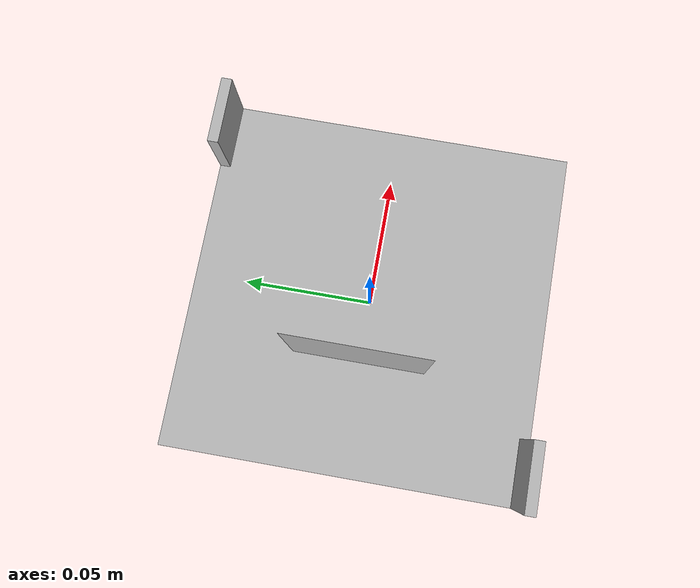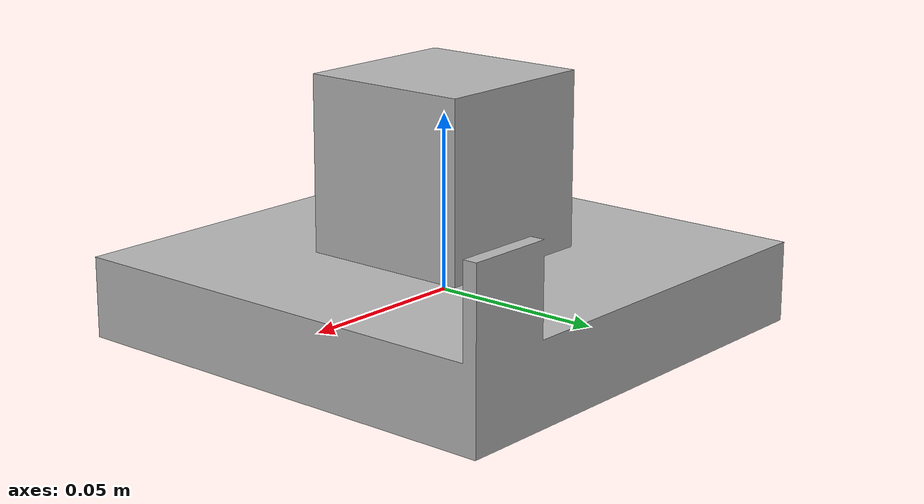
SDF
<?xml version="1.0"?>
<sdf version="1.6">
  <model name="P80 Pallet">
    <pose>0 0 0 0 0 0</pose>
    <static>false</static>
    <link name="link">
      <visual name="visual">
        <geometry>
          <mesh>
            <uri>model://P80_Pallet/meshes/pallet.dae</uri>
            <scale>0.1 0.1 0.1</scale>
          </mesh>
        </geometry>
      </visual>
      <collision name="collision">
	<geometry>
	  <mesh>
	    <uri>model://P80_Pallet/meshes/pallet.dae</uri>
	    <scale>0.1 0.1 0.1</scale>
	  </mesh>
	</geometry>
      </collision>
    </link>
  </model>
</sdf>
